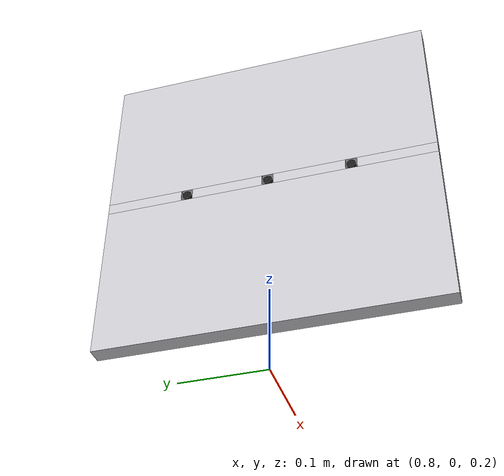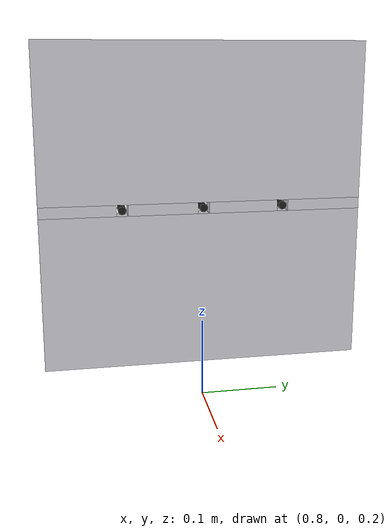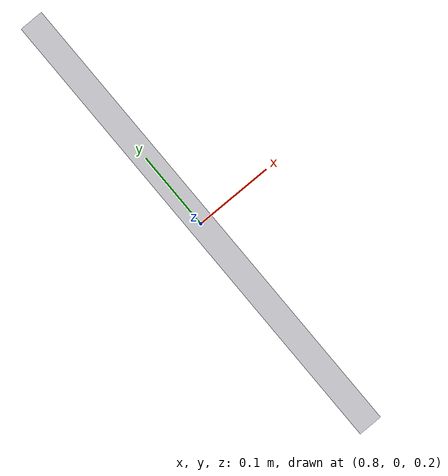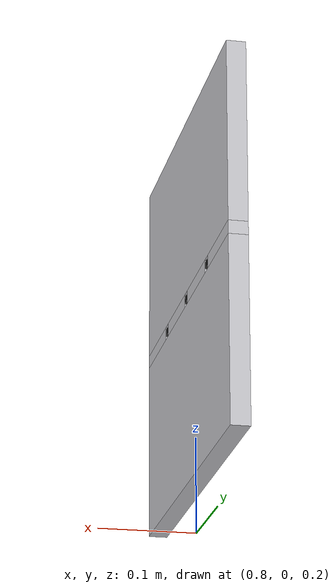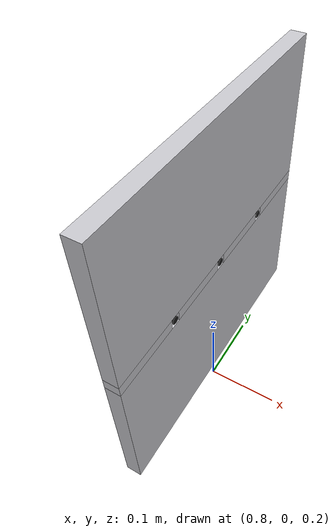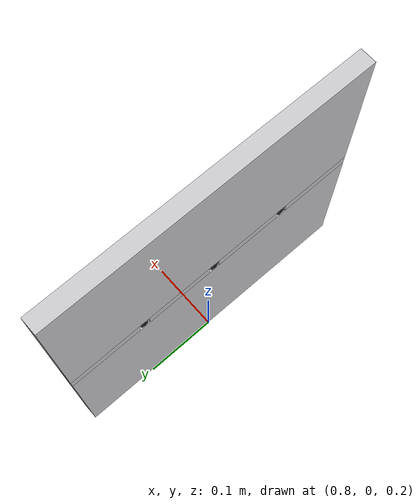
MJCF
<mujoco model="wall_with_holes">

  <asset>
    <material name="wall_material" rgba="0.78 0.78 0.80 1" specular="0.2" shininess="0.2"/>
    <material name="hole_dark" rgba="0.10 0.10 0.10 1" specular="0.0" shininess="0.0"/>
  </asset>

  <default>
    <default class="wall_solid">
      <geom type="box" material="wall_material" condim="3"
            friction="0.8 0.005 0.0001"/>
    </default>
    <default class="hole_visual">
      <geom type="cylinder" material="hole_dark"
            contype="0" conaffinity="0" group="2"/>
    </default>
  </default>

  <worldbody>
    <body name="wall" pos="0.80 0 0.45">
      <!-- Wall surrounds three 14 mm-wide openings centred on z = 0
           in the body's local frame (the body itself is at world z=0.45). -->

      <!-- Top piece: above the hole row. z in [0.007, 0.20], height 0.193, half-height 0.0965, centre z=0.1035 -->
      <geom name="wall_top"    class="wall_solid" pos="0  0.000  0.1035" size="0.010 0.200 0.0965"/>

      <!-- Bottom piece: below the hole row. -->
      <geom name="wall_bottom" class="wall_solid" pos="0  0.000 -0.1035" size="0.010 0.200 0.0965"/>

      <!-- Left strip (left of hole_0). y in [-0.200, -0.107], width 0.093, half 0.0465, centre -0.1535 -->
      <geom name="wall_left"   class="wall_solid" pos="0 -0.1535 0.000" size="0.010 0.0465 0.007"/>

      <!-- Between hole_0 and hole_1. y in [-0.093, -0.007], width 0.086, half 0.043, centre -0.050 -->
      <geom name="wall_mid_01" class="wall_solid" pos="0 -0.0500 0.000" size="0.010 0.0430 0.007"/>

      <!-- Between hole_1 and hole_2. -->
      <geom name="wall_mid_12" class="wall_solid" pos="0  0.0500 0.000" size="0.010 0.0430 0.007"/>

      <!-- Right strip (right of hole_2). -->
      <geom name="wall_right"  class="wall_solid" pos="0  0.1535 0.000" size="0.010 0.0465 0.007"/>

      <!-- Hole-interior visuals: thin dark cylinders along x, sized to span the wall thickness. -->
      <geom name="hole_visual_0" class="hole_visual" fromto="-0.010 -0.100 0.000  0.010 -0.100 0.000" size="0.005"/>
      <geom name="hole_visual_1" class="hole_visual" fromto="-0.010  0.000 0.000  0.010  0.000 0.000" size="0.005"/>
      <geom name="hole_visual_2" class="hole_visual" fromto="-0.010  0.100 0.000  0.010  0.100 0.000" size="0.005"/>

      <!-- Hole centre sites on the robot-facing wall surface (x = -0.010 in body frame). -->
      <site name="hole_0" pos="-0.010 -0.100 0.000" size="0.003" rgba="1 1 0 0.4" group="3"/>
      <site name="hole_1" pos="-0.010  0.000 0.000" size="0.003" rgba="1 1 0 0.4" group="3"/>
      <site name="hole_2" pos="-0.010  0.100 0.000" size="0.003" rgba="1 1 0 0.4" group="3"/>
    </body>
  </worldbody>
</mujoco>
